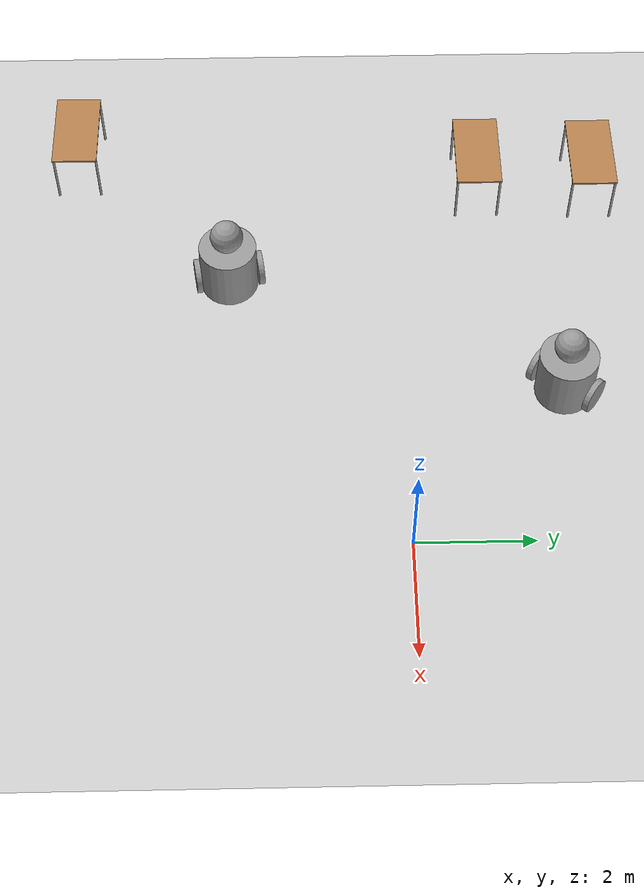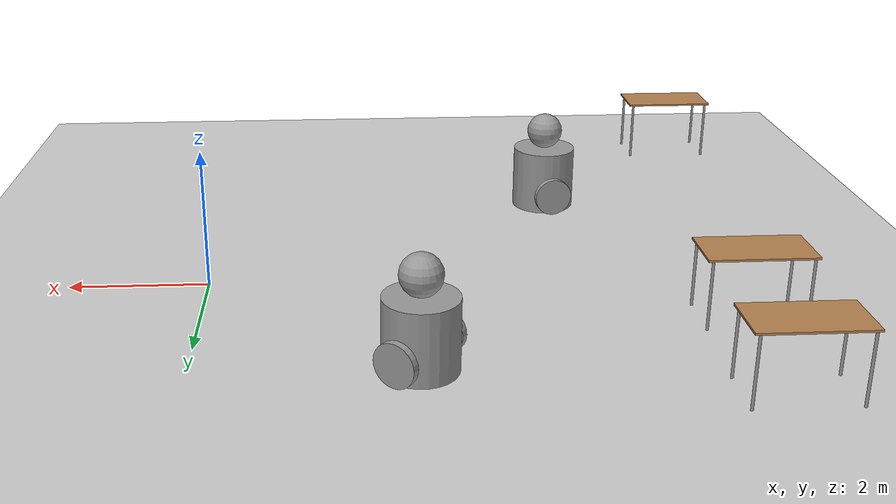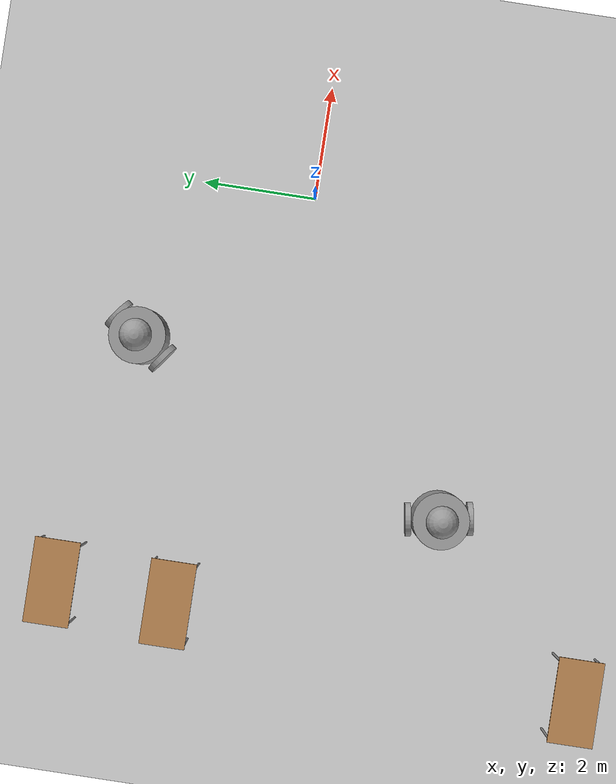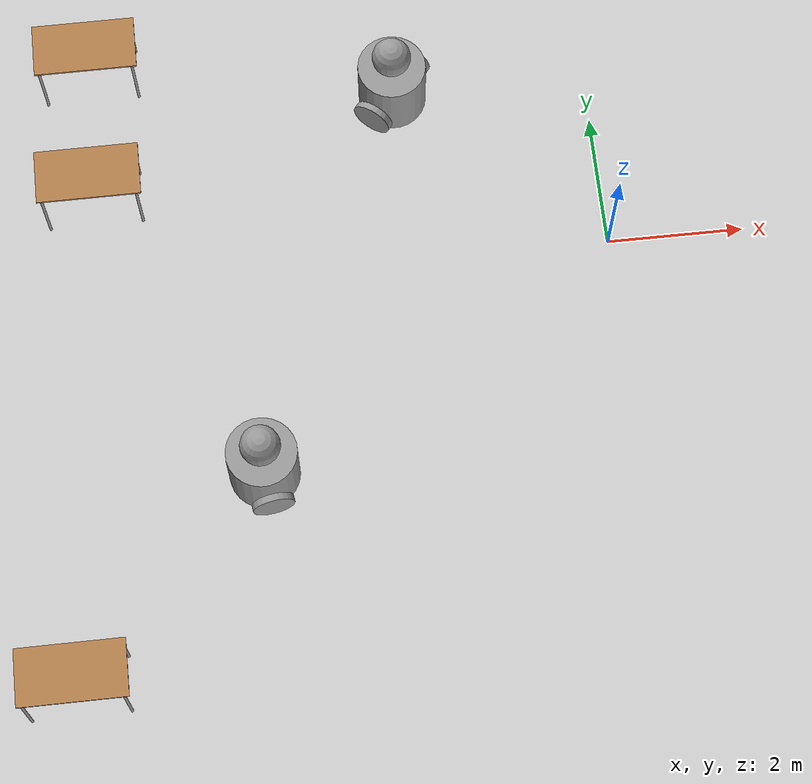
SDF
<sdf version="1.7">
 <world name="world_demo">
  <model name="ground_plane">
   <static>1</static>
   <link name="link">
    <collision name="collision">
     <geometry><plane><normal>0 0 1</normal><size>1 1</size></plane></geometry>
    </collision>
    <visual name="visual">
     <geometry><plane><normal>0 0 1</normal><size>100 100</size></plane></geometry>
     <material>
      <ambient>0.8 0.8 0.8 1</ambient>
      <diffuse>0.8 0.8 0.8 1</diffuse>
      <specular>0.8 0.8 0.8 1</specular>
     </material>
    </visual>
   </link>
  </model>
  <model name="table">
   <static>1</static>
   <link name="link">
    <collision name="surface">
     <pose>0 0 1 0 -0 0</pose>
     <geometry><box><size>1.5 0.8 0.03</size></box></geometry>
     <surface><friction><ode><mu>0.6</mu><mu2>0.6</mu2></ode></friction></surface>
    </collision>
    <visual name="visual1">
     <pose>0 0 1 0 -0 0</pose>
     <geometry><box><size>1.5 0.8 0.03</size></box></geometry>
     <material>
      <script><uri>file://media/materials/scripts/gazebo.material</uri><name>Gazebo/Wood</name></script>
     </material>
    </visual>
    <collision name="front_left_leg">
     <pose>0.68 0.38 0.5 0 -0 0</pose>
     <geometry><cylinder><radius>0.02</radius><length>1</length></cylinder></geometry>
    </collision>
    <visual name="front_left_leg">
     <pose>0.68 0.38 0.5 0 -0 0</pose>
     <geometry><cylinder><radius>0.02</radius><length>1</length></cylinder></geometry>
     <material>
      <script><uri>file://media/materials/scripts/gazebo.material</uri><name>Gazebo/Grey</name></script>
     </material>
    </visual>
    <collision name="front_right_leg">
     <pose>0.68 -0.38 0.5 0 -0 0</pose>
     <geometry><cylinder><radius>0.02</radius><length>1</length></cylinder></geometry>
    </collision>
    <visual name="front_right_leg">
     <pose>0.68 -0.38 0.5 0 -0 0</pose>
     <geometry><cylinder><radius>0.02</radius><length>1</length></cylinder></geometry>
     <material>
      <script><uri>file://media/materials/scripts/gazebo.material</uri><name>Gazebo/Grey</name></script>
     </material>
    </visual>
    <collision name="back_right_leg">
     <pose>-0.68 -0.38 0.5 0 -0 0</pose>
     <geometry><cylinder><radius>0.02</radius><length>1</length></cylinder></geometry>
    </collision>
    <visual name="back_right_leg">
     <pose>-0.68 -0.38 0.5 0 -0 0</pose>
     <geometry><cylinder><radius>0.02</radius><length>1</length></cylinder></geometry>
     <material>
      <script><uri>file://media/materials/scripts/gazebo.material</uri><name>Gazebo/Grey</name></script>
     </material>
    </visual>
    <collision name="back_left_leg">
     <pose>-0.68 0.38 0.5 0 -0 0</pose>
     <geometry><cylinder><radius>0.02</radius><length>1</length></cylinder></geometry>
    </collision>
    <visual name="back_left_leg">
     <pose>-0.68 0.38 0.5 0 -0 0</pose>
     <geometry><cylinder><radius>0.02</radius><length>1</length></cylinder></geometry>
     <material>
      <script><uri>file://media/materials/scripts/gazebo.material</uri><name>Gazebo/Grey</name></script>
     </material>
    </visual>
   </link>
   <pose>-7.37575 3.50508 0 0 -0 0</pose>
  </model>
  <model name="table_0">
   <static>1</static>
   <link name="link">
    <collision name="surface">
     <pose>0 0 1 0 -0 0</pose>
     <geometry><box><size>1.5 0.8 0.03</size></box></geometry>
     <surface><friction><ode><mu>0.6</mu><mu2>0.6</mu2></ode></friction></surface>
    </collision>
    <visual name="visual1">
     <pose>0 0 1 0 -0 0</pose>
     <geometry><box><size>1.5 0.8 0.03</size></box></geometry>
     <material>
      <script><uri>file://media/materials/scripts/gazebo.material</uri><name>Gazebo/Wood</name></script>
     </material>
    </visual>
    <collision name="front_left_leg">
     <pose>0.68 0.38 0.5 0 -0 0</pose>
     <geometry><cylinder><radius>0.02</radius><length>1</length></cylinder></geometry>
    </collision>
    <visual name="front_left_leg">
     <pose>0.68 0.38 0.5 0 -0 0</pose>
     <geometry><cylinder><radius>0.02</radius><length>1</length></cylinder></geometry>
     <material>
      <script><uri>file://media/materials/scripts/gazebo.material</uri><name>Gazebo/Grey</name></script>
     </material>
    </visual>
    <collision name="front_right_leg">
     <pose>0.68 -0.38 0.5 0 -0 0</pose>
     <geometry><cylinder><radius>0.02</radius><length>1</length></cylinder></geometry>
    </collision>
    <visual name="front_right_leg">
     <pose>0.68 -0.38 0.5 0 -0 0</pose>
     <geometry><cylinder><radius>0.02</radius><length>1</length></cylinder></geometry>
     <material>
      <script><uri>file://media/materials/scripts/gazebo.material</uri><name>Gazebo/Grey</name></script>
     </material>
    </visual>
    <collision name="back_right_leg">
     <pose>-0.68 -0.38 0.5 0 -0 0</pose>
     <geometry><cylinder><radius>0.02</radius><length>1</length></cylinder></geometry>
    </collision>
    <visual name="back_right_leg">
     <pose>-0.68 -0.38 0.5 0 -0 0</pose>
     <geometry><cylinder><radius>0.02</radius><length>1</length></cylinder></geometry>
     <material>
      <script><uri>file://media/materials/scripts/gazebo.material</uri><name>Gazebo/Grey</name></script>
     </material>
    </visual>
    <collision name="back_left_leg">
     <pose>-0.68 0.38 0.5 0 -0 0</pose>
     <geometry><cylinder><radius>0.02</radius><length>1</length></cylinder></geometry>
    </collision>
    <visual name="back_left_leg">
     <pose>-0.68 0.38 0.5 0 -0 0</pose>
     <geometry><cylinder><radius>0.02</radius><length>1</length></cylinder></geometry>
     <material>
      <script><uri>file://media/materials/scripts/gazebo.material</uri><name>Gazebo/Grey</name></script>
     </material>
    </visual>
   </link>
   <pose>-7.44483 1.45243 0 0 -0 0</pose>
  </model>
  <model name="table_1">
   <static>1</static>
   <link name="link">
    <collision name="surface">
     <pose>0 0 1 0 -0 0</pose>
     <geometry><box><size>1.5 0.8 0.03</size></box></geometry>
     <surface><friction><ode><mu>0.6</mu><mu2>0.6</mu2></ode></friction></surface>
    </collision>
    <visual name="visual1">
     <pose>0 0 1 0 -0 0</pose>
     <geometry><box><size>1.5 0.8 0.03</size></box></geometry>
     <material>
      <script><uri>file://media/materials/scripts/gazebo.material</uri><name>Gazebo/Wood</name></script>
     </material>
    </visual>
    <collision name="front_left_leg">
     <pose>0.68 0.38 0.5 0 -0 0</pose>
     <geometry><cylinder><radius>0.02</radius><length>1</length></cylinder></geometry>
    </collision>
    <visual name="front_left_leg">
     <pose>0.68 0.38 0.5 0 -0 0</pose>
     <geometry><cylinder><radius>0.02</radius><length>1</length></cylinder></geometry>
     <material>
      <script><uri>file://media/materials/scripts/gazebo.material</uri><name>Gazebo/Grey</name></script>
     </material>
    </visual>
    <collision name="front_right_leg">
     <pose>0.68 -0.38 0.5 0 -0 0</pose>
     <geometry><cylinder><radius>0.02</radius><length>1</length></cylinder></geometry>
    </collision>
    <visual name="front_right_leg">
     <pose>0.68 -0.38 0.5 0 -0 0</pose>
     <geometry><cylinder><radius>0.02</radius><length>1</length></cylinder></geometry>
     <material>
      <script><uri>file://media/materials/scripts/gazebo.material</uri><name>Gazebo/Grey</name></script>
     </material>
    </visual>
    <collision name="back_right_leg">
     <pose>-0.68 -0.38 0.5 0 -0 0</pose>
     <geometry><cylinder><radius>0.02</radius><length>1</length></cylinder></geometry>
    </collision>
    <visual name="back_right_leg">
     <pose>-0.68 -0.38 0.5 0 -0 0</pose>
     <geometry><cylinder><radius>0.02</radius><length>1</length></cylinder></geometry>
     <material>
      <script><uri>file://media/materials/scripts/gazebo.material</uri><name>Gazebo/Grey</name></script>
     </material>
    </visual>
    <collision name="back_left_leg">
     <pose>-0.68 0.38 0.5 0 -0 0</pose>
     <geometry><cylinder><radius>0.02</radius><length>1</length></cylinder></geometry>
    </collision>
    <visual name="back_left_leg">
     <pose>-0.68 0.38 0.5 0 -0 0</pose>
     <geometry><cylinder><radius>0.02</radius><length>1</length></cylinder></geometry>
     <material>
      <script><uri>file://media/materials/scripts/gazebo.material</uri><name>Gazebo/Grey</name></script>
     </material>
    </visual>
   </link>
   <pose>-8.07042 -5.81374 0 0 -0 0</pose>
  </model>
  <model name="korosuke">
   <link name="link_0">
    <inertial>
     <mass>1</mass>
     <inertia><ixx>0.145833</ixx><ixy>0</ixy><ixz>0</ixz><iyy>0.145833</iyy><iyz>0</iyz><izz>0.125</izz></inertia>
     <pose>0 0 0.2 0 -0 0</pose>
    </inertial>
    <pose>0 0 -0.252162 0 -0 0</pose>
    <visual name="visual">
     <pose>0 0 0.2 0 -0 0</pose>
     <geometry><cylinder><radius>0.5</radius><length>1</length></cylinder></geometry>
     <material>
      <lighting>1</lighting>
      <script><uri>file://media/materials/scripts/gazebo.material</uri><name>Gazebo/Grey</name></script>
      <shader type="pixel"><normal_map>__default__</normal_map></shader>
      <ambient>0.3 0.3 0.3 1</ambient>
      <diffuse>0.7 0.7 0.7 1</diffuse>
      <specular>0.01 0.01 0.01 1</specular>
      <emissive>0 0 0 1</emissive>
     </material>
    </visual>
    <collision name="collision">
     <pose>0 0 0.2 0 -0 0</pose>
     <geometry><cylinder><radius>0.5</radius><length>1</length></cylinder></geometry>
     <surface>
      <friction>
       <ode><mu>1</mu><mu2>1</mu2><fdir1>0 0 0</fdir1><slip1>0</slip1><slip2>0</slip2></ode>
       <torsional>
        <coefficient>1</coefficient>
        <patch_radius>0</patch_radius>
        <surface_radius>0</surface_radius>
        <use_patch_radius>1</use_patch_radius>
        <ode><slip>0</slip></ode>
       </torsional>
      </friction>
      <bounce><restitution_coefficient>0</restitution_coefficient><threshold>1e+06</threshold></bounce>
      <contact>
       <collide_without_contact>0</collide_without_contact>
       <collide_without_contact_bitmask>1</collide_without_contact_bitmask>
       <collide_bitmask>1</collide_bitmask>
       <ode>
        <soft_cfm>0</soft_cfm>
        <soft_erp>0.2</soft_erp>
        <kp>1e+13</kp>
        <kd>1</kd>
        <max_vel>0.01</max_vel>
        <min_depth>0</min_depth>
       </ode>
       <bullet>
        <split_impulse>1</split_impulse>
        <split_impulse_penetration_threshold>-0.01</split_impulse_penetration_threshold>
        <soft_cfm>0</soft_cfm>
        <soft_erp>0.2</soft_erp>
        <kp>1e+13</kp>
        <kd>1</kd>
       </bullet>
      </contact>
     </surface>
    </collision>
   </link>
   <link name="link_1">
    <inertial>
     <mass>1</mass>
     <inertia><ixx>0.145833</ixx><ixy>0</ixy><ixz>0</ixz><iyy>0.145833</iyy><iyz>0</iyz><izz>0.125</izz></inertia>
    </inertial>
    <pose>0 -0.550029 -0.242163 1.5707 -0 0</pose>
    <visual name="visual">
     <geometry><cylinder><radius>0.3</radius><length>0.1</length></cylinder></geometry>
     <material>
      <lighting>1</lighting>
      <script><uri>file://media/materials/scripts/gazebo.material</uri><name>Gazebo/Grey</name></script>
      <shader type="pixel"><normal_map>__default__</normal_map></shader>
      <ambient>0.3 0.3 0.3 1</ambient>
      <diffuse>0.7 0.7 0.7 1</diffuse>
      <specular>0.01 0.01 0.01 1</specular>
      <emissive>0 0 0 1</emissive>
     </material>
    </visual>
    <collision name="collision">
     <geometry><cylinder><radius>0.3</radius><length>0.1</length></cylinder></geometry>
     <surface>
      <friction>
       <ode><mu>1</mu><mu2>1</mu2><fdir1>0 0 0</fdir1><slip1>0</slip1><slip2>0</slip2></ode>
       <torsional>
        <coefficient>1</coefficient>
        <patch_radius>0</patch_radius>
        <surface_radius>0</surface_radius>
        <use_patch_radius>1</use_patch_radius>
        <ode><slip>0</slip></ode>
       </torsional>
      </friction>
      <bounce><restitution_coefficient>0</restitution_coefficient><threshold>1e+06</threshold></bounce>
      <contact>
       <collide_without_contact>0</collide_without_contact>
       <collide_without_contact_bitmask>1</collide_without_contact_bitmask>
       <collide_bitmask>1</collide_bitmask>
       <ode>
        <soft_cfm>0</soft_cfm>
        <soft_erp>0.2</soft_erp>
        <kp>1e+13</kp>
        <kd>1</kd>
        <max_vel>0.01</max_vel>
        <min_depth>0</min_depth>
       </ode>
       <bullet>
        <split_impulse>1</split_impulse>
        <split_impulse_penetration_threshold>-0.01</split_impulse_penetration_threshold>
        <soft_cfm>0</soft_cfm>
        <soft_erp>0.2</soft_erp>
        <kp>1e+13</kp>
        <kd>1</kd>
       </bullet>
      </contact>
     </surface>
    </collision>
   </link>
   <link name="link_1_clone">
    <inertial>
     <mass>1</mass>
     <inertia><ixx>0.145833</ixx><ixy>0</ixy><ixz>0</ixz><iyy>0.145833</iyy><iyz>0</iyz><izz>0.125</izz></inertia>
    </inertial>
    <pose>0 0.550029 -0.242163 1.5707 -0 0</pose>
    <visual name="visual">
     <geometry><cylinder><radius>0.3</radius><length>0.1</length></cylinder></geometry>
     <material>
      <lighting>1</lighting>
      <script><uri>file://media/materials/scripts/gazebo.material</uri><name>Gazebo/Grey</name></script>
      <shader type="pixel"><normal_map>__default__</normal_map></shader>
      <ambient>0.3 0.3 0.3 1</ambient>
      <diffuse>0.7 0.7 0.7 1</diffuse>
      <specular>0.01 0.01 0.01 1</specular>
      <emissive>0 0 0 1</emissive>
     </material>
    </visual>
    <collision name="collision">
     <geometry><cylinder><radius>0.3</radius><length>0.1</length></cylinder></geometry>
     <surface>
      <friction>
       <ode><mu>1</mu><mu2>1</mu2><fdir1>0 0 0</fdir1><slip1>0</slip1><slip2>0</slip2></ode>
       <torsional>
        <coefficient>1</coefficient>
        <patch_radius>0</patch_radius>
        <surface_radius>0</surface_radius>
        <use_patch_radius>1</use_patch_radius>
        <ode><slip>0</slip></ode>
       </torsional>
      </friction>
      <bounce><restitution_coefficient>0</restitution_coefficient><threshold>1e+06</threshold></bounce>
      <contact>
       <collide_without_contact>0</collide_without_contact>
       <collide_without_contact_bitmask>1</collide_without_contact_bitmask>
       <collide_bitmask>1</collide_bitmask>
       <ode>
        <soft_cfm>0</soft_cfm>
        <soft_erp>0.2</soft_erp>
        <kp>1e+13</kp>
        <kd>1</kd>
        <max_vel>0.01</max_vel>
        <min_depth>0</min_depth>
       </ode>
       <bullet>
        <split_impulse>1</split_impulse>
        <split_impulse_penetration_threshold>-0.01</split_impulse_penetration_threshold>
        <soft_cfm>0</soft_cfm>
        <soft_erp>0.2</soft_erp>
        <kp>1e+13</kp>
        <kd>1</kd>
       </bullet>
      </contact>
     </surface>
    </collision>
   </link>
   <link name="link_2">
    <inertial>
     <mass>0.184277</mass>
     <inertia>
      <ixx>0.00596732</ixx>
      <ixy>0</ixy>
      <ixz>0</ixz>
      <iyy>0.00596732</iyy>
      <iyz>0</iyz>
      <izz>0.00596732</izz>
     </inertia>
    </inertial>
    <pose>0 0 0.73649 0 -0 0</pose>
    <visual name="visual">
     <geometry><sphere><radius>0.284527</radius></sphere></geometry>
     <material>
      <lighting>1</lighting>
      <script><uri>file://media/materials/scripts/gazebo.material</uri><name>Gazebo/Grey</name></script>
      <shader type="pixel"/>
      <emissive>0 0 0 1</emissive>
     </material>
    </visual>
    <collision name="collision">
     <geometry><sphere><radius>0.284527</radius></sphere></geometry>
     <surface>
      <friction>
       <ode><mu>1</mu><mu2>1</mu2><fdir1>0 0 0</fdir1><slip1>0</slip1><slip2>0</slip2></ode>
       <torsional>
        <coefficient>1</coefficient>
        <patch_radius>0</patch_radius>
        <surface_radius>0</surface_radius>
        <use_patch_radius>1</use_patch_radius>
        <ode><slip>0</slip></ode>
       </torsional>
      </friction>
      <bounce><restitution_coefficient>0</restitution_coefficient><threshold>1e+06</threshold></bounce>
      <contact>
       <collide_without_contact>0</collide_without_contact>
       <collide_without_contact_bitmask>1</collide_without_contact_bitmask>
       <collide_bitmask>1</collide_bitmask>
       <ode>
        <soft_cfm>0</soft_cfm>
        <soft_erp>0.2</soft_erp>
        <kp>1e+13</kp>
        <kd>1</kd>
        <max_vel>0.01</max_vel>
        <min_depth>0</min_depth>
       </ode>
       <bullet>
        <split_impulse>1</split_impulse>
        <split_impulse_penetration_threshold>-0.01</split_impulse_penetration_threshold>
        <soft_cfm>0</soft_cfm>
        <soft_erp>0.2</soft_erp>
        <kp>1e+13</kp>
        <kd>1</kd>
       </bullet>
      </contact>
     </surface>
    </collision>
   </link>
   <joint name="link_0_JOINT_1" type="revolute">
    <parent>link_0</parent>
    <child>link_1</child>
    <axis>
     <xyz>1 0 0</xyz>
     <limit>
      <lower>-1.79769e+308</lower>
      <upper>1.79769e+308</upper>
      <effort>-1</effort>
      <velocity>-1</velocity>
     </limit>
     <dynamics>
      <spring_reference>0</spring_reference>
      <spring_stiffness>0</spring_stiffness>
      <damping>0</damping>
     </dynamics>
    </axis>
    <physics>
     <ode><limit><cfm>0</cfm><erp>0.2</erp></limit><suspension><cfm>0</cfm><erp>0.2</erp></suspension></ode>
    </physics>
   </joint>
   <joint name="link_0_JOINT_2" type="revolute">
    <parent>link_0</parent>
    <child>link_1_clone</child>
    <axis>
     <xyz>1 0 0</xyz>
     <limit>
      <lower>-1.79769e+308</lower>
      <upper>1.79769e+308</upper>
      <effort>-1</effort>
      <velocity>-1</velocity>
     </limit>
     <dynamics>
      <spring_reference>0</spring_reference>
      <spring_stiffness>0</spring_stiffness>
      <damping>0</damping>
     </dynamics>
    </axis>
    <physics>
     <ode><limit><cfm>0</cfm><erp>0.2</erp></limit><suspension><cfm>0</cfm><erp>0.2</erp></suspension></ode>
    </physics>
   </joint>
   <joint name="link_0_JOINT_4" type="revolute">
    <parent>link_0</parent>
    <child>link_2</child>
    <axis>
     <xyz>1 0 0</xyz>
     <limit>
      <lower>-1.79769e+308</lower>
      <upper>1.79769e+308</upper>
      <effort>-1</effort>
      <velocity>-1</velocity>
     </limit>
     <dynamics>
      <spring_reference>0</spring_reference>
      <spring_stiffness>0</spring_stiffness>
      <damping>0</damping>
     </dynamics>
    </axis>
    <physics>
     <ode><limit><cfm>0</cfm><erp>0.2</erp></limit><suspension><cfm>0</cfm><erp>0.2</erp></suspension></ode>
    </physics>
   </joint>
   <static>0</static>
   <pose>-2.90566 2.69036 0.555308 -0.004332 0.00461 2.49993</pose>
  </model>
  <model name="korosuke_0">
   <link name="link_0">
    <inertial>
     <mass>1</mass>
     <inertia><ixx>0.145833</ixx><ixy>0</ixy><ixz>0</ixz><iyy>0.145833</iyy><iyz>0</iyz><izz>0.125</izz></inertia>
     <pose>0 0 0.2 0 -0 0</pose>
    </inertial>
    <pose>0 0 -0.252162 0 -0 0</pose>
    <visual name="visual">
     <pose>0 0 0.2 0 -0 0</pose>
     <geometry><cylinder><radius>0.5</radius><length>1</length></cylinder></geometry>
     <material>
      <lighting>1</lighting>
      <script><uri>file://media/materials/scripts/gazebo.material</uri><name>Gazebo/Grey</name></script>
      <shader type="pixel"><normal_map>__default__</normal_map></shader>
      <ambient>0.3 0.3 0.3 1</ambient>
      <diffuse>0.7 0.7 0.7 1</diffuse>
      <specular>0.01 0.01 0.01 1</specular>
      <emissive>0 0 0 1</emissive>
     </material>
    </visual>
    <collision name="collision">
     <pose>0 0 0.2 0 -0 0</pose>
     <geometry><cylinder><radius>0.5</radius><length>1</length></cylinder></geometry>
     <surface>
      <friction>
       <ode><mu>1</mu><mu2>1</mu2><fdir1>0 0 0</fdir1><slip1>0</slip1><slip2>0</slip2></ode>
       <torsional>
        <coefficient>1</coefficient>
        <patch_radius>0</patch_radius>
        <surface_radius>0</surface_radius>
        <use_patch_radius>1</use_patch_radius>
        <ode><slip>0</slip></ode>
       </torsional>
      </friction>
      <bounce><restitution_coefficient>0</restitution_coefficient><threshold>1e+06</threshold></bounce>
      <contact>
       <collide_without_contact>0</collide_without_contact>
       <collide_without_contact_bitmask>1</collide_without_contact_bitmask>
       <collide_bitmask>1</collide_bitmask>
       <ode>
        <soft_cfm>0</soft_cfm>
        <soft_erp>0.2</soft_erp>
        <kp>1e+13</kp>
        <kd>1</kd>
        <max_vel>0.01</max_vel>
        <min_depth>0</min_depth>
       </ode>
       <bullet>
        <split_impulse>1</split_impulse>
        <split_impulse_penetration_threshold>-0.01</split_impulse_penetration_threshold>
        <soft_cfm>0</soft_cfm>
        <soft_erp>0.2</soft_erp>
        <kp>1e+13</kp>
        <kd>1</kd>
       </bullet>
      </contact>
     </surface>
    </collision>
   </link>
   <link name="link_1">
    <inertial>
     <mass>1</mass>
     <inertia><ixx>0.145833</ixx><ixy>0</ixy><ixz>0</ixz><iyy>0.145833</iyy><iyz>0</iyz><izz>0.125</izz></inertia>
    </inertial>
    <pose>0 -0.550029 -0.242163 1.5707 -0 0</pose>
    <visual name="visual">
     <geometry><cylinder><radius>0.3</radius><length>0.1</length></cylinder></geometry>
     <material>
      <lighting>1</lighting>
      <script><uri>file://media/materials/scripts/gazebo.material</uri><name>Gazebo/Grey</name></script>
      <shader type="pixel"><normal_map>__default__</normal_map></shader>
      <ambient>0.3 0.3 0.3 1</ambient>
      <diffuse>0.7 0.7 0.7 1</diffuse>
      <specular>0.01 0.01 0.01 1</specular>
      <emissive>0 0 0 1</emissive>
     </material>
    </visual>
    <collision name="collision">
     <geometry><cylinder><radius>0.3</radius><length>0.1</length></cylinder></geometry>
     <surface>
      <friction>
       <ode><mu>1</mu><mu2>1</mu2><fdir1>0 0 0</fdir1><slip1>0</slip1><slip2>0</slip2></ode>
       <torsional>
        <coefficient>1</coefficient>
        <patch_radius>0</patch_radius>
        <surface_radius>0</surface_radius>
        <use_patch_radius>1</use_patch_radius>
        <ode><slip>0</slip></ode>
       </torsional>
      </friction>
      <bounce><restitution_coefficient>0</restitution_coefficient><threshold>1e+06</threshold></bounce>
      <contact>
       <collide_without_contact>0</collide_without_contact>
       <collide_without_contact_bitmask>1</collide_without_contact_bitmask>
       <collide_bitmask>1</collide_bitmask>
       <ode>
        <soft_cfm>0</soft_cfm>
        <soft_erp>0.2</soft_erp>
        <kp>1e+13</kp>
        <kd>1</kd>
        <max_vel>0.01</max_vel>
        <min_depth>0</min_depth>
       </ode>
       <bullet>
        <split_impulse>1</split_impulse>
        <split_impulse_penetration_threshold>-0.01</split_impulse_penetration_threshold>
        <soft_cfm>0</soft_cfm>
        <soft_erp>0.2</soft_erp>
        <kp>1e+13</kp>
        <kd>1</kd>
       </bullet>
      </contact>
     </surface>
    </collision>
   </link>
   <link name="link_1_clone">
    <inertial>
     <mass>1</mass>
     <inertia><ixx>0.145833</ixx><ixy>0</ixy><ixz>0</ixz><iyy>0.145833</iyy><iyz>0</iyz><izz>0.125</izz></inertia>
    </inertial>
    <pose>0 0.550029 -0.242163 1.5707 -0 0</pose>
    <visual name="visual">
     <geometry><cylinder><radius>0.3</radius><length>0.1</length></cylinder></geometry>
     <material>
      <lighting>1</lighting>
      <script><uri>file://media/materials/scripts/gazebo.material</uri><name>Gazebo/Grey</name></script>
      <shader type="pixel"><normal_map>__default__</normal_map></shader>
      <ambient>0.3 0.3 0.3 1</ambient>
      <diffuse>0.7 0.7 0.7 1</diffuse>
      <specular>0.01 0.01 0.01 1</specular>
      <emissive>0 0 0 1</emissive>
     </material>
    </visual>
    <collision name="collision">
     <geometry><cylinder><radius>0.3</radius><length>0.1</length></cylinder></geometry>
     <surface>
      <friction>
       <ode><mu>1</mu><mu2>1</mu2><fdir1>0 0 0</fdir1><slip1>0</slip1><slip2>0</slip2></ode>
       <torsional>
        <coefficient>1</coefficient>
        <patch_radius>0</patch_radius>
        <surface_radius>0</surface_radius>
        <use_patch_radius>1</use_patch_radius>
        <ode><slip>0</slip></ode>
       </torsional>
      </friction>
      <bounce><restitution_coefficient>0</restitution_coefficient><threshold>1e+06</threshold></bounce>
      <contact>
       <collide_without_contact>0</collide_without_contact>
       <collide_without_contact_bitmask>1</collide_without_contact_bitmask>
       <collide_bitmask>1</collide_bitmask>
       <ode>
        <soft_cfm>0</soft_cfm>
        <soft_erp>0.2</soft_erp>
        <kp>1e+13</kp>
        <kd>1</kd>
        <max_vel>0.01</max_vel>
        <min_depth>0</min_depth>
       </ode>
       <bullet>
        <split_impulse>1</split_impulse>
        <split_impulse_penetration_threshold>-0.01</split_impulse_penetration_threshold>
        <soft_cfm>0</soft_cfm>
        <soft_erp>0.2</soft_erp>
        <kp>1e+13</kp>
        <kd>1</kd>
       </bullet>
      </contact>
     </surface>
    </collision>
   </link>
   <link name="link_2">
    <inertial>
     <mass>0.184277</mass>
     <inertia>
      <ixx>0.00596732</ixx>
      <ixy>0</ixy>
      <ixz>0</ixz>
      <iyy>0.00596732</iyy>
      <iyz>0</iyz>
      <izz>0.00596732</izz>
     </inertia>
    </inertial>
    <pose>0 0 0.73649 0 -0 0</pose>
    <visual name="visual">
     <geometry><sphere><radius>0.284527</radius></sphere></geometry>
     <material>
      <lighting>1</lighting>
      <script><uri>file://media/materials/scripts/gazebo.material</uri><name>Gazebo/Grey</name></script>
      <shader type="pixel"/>
      <emissive>0 0 0 1</emissive>
     </material>
    </visual>
    <collision name="collision">
     <geometry><sphere><radius>0.284527</radius></sphere></geometry>
     <surface>
      <friction>
       <ode><mu>1</mu><mu2>1</mu2><fdir1>0 0 0</fdir1><slip1>0</slip1><slip2>0</slip2></ode>
       <torsional>
        <coefficient>1</coefficient>
        <patch_radius>0</patch_radius>
        <surface_radius>0</surface_radius>
        <use_patch_radius>1</use_patch_radius>
        <ode><slip>0</slip></ode>
       </torsional>
      </friction>
      <bounce><restitution_coefficient>0</restitution_coefficient><threshold>1e+06</threshold></bounce>
      <contact>
       <collide_without_contact>0</collide_without_contact>
       <collide_without_contact_bitmask>1</collide_without_contact_bitmask>
       <collide_bitmask>1</collide_bitmask>
       <ode>
        <soft_cfm>0</soft_cfm>
        <soft_erp>0.2</soft_erp>
        <kp>1e+13</kp>
        <kd>1</kd>
        <max_vel>0.01</max_vel>
        <min_depth>0</min_depth>
       </ode>
       <bullet>
        <split_impulse>1</split_impulse>
        <split_impulse_penetration_threshold>-0.01</split_impulse_penetration_threshold>
        <soft_cfm>0</soft_cfm>
        <soft_erp>0.2</soft_erp>
        <kp>1e+13</kp>
        <kd>1</kd>
       </bullet>
      </contact>
     </surface>
    </collision>
   </link>
   <joint name="link_0_JOINT_1" type="revolute">
    <parent>link_0</parent>
    <child>link_1</child>
    <axis>
     <xyz>1 0 0</xyz>
     <limit>
      <lower>-1.79769e+308</lower>
      <upper>1.79769e+308</upper>
      <effort>-1</effort>
      <velocity>-1</velocity>
     </limit>
     <dynamics>
      <spring_reference>0</spring_reference>
      <spring_stiffness>0</spring_stiffness>
      <damping>0</damping>
     </dynamics>
    </axis>
    <physics>
     <ode><limit><cfm>0</cfm><erp>0.2</erp></limit><suspension><cfm>0</cfm><erp>0.2</erp></suspension></ode>
    </physics>
   </joint>
   <joint name="link_0_JOINT_2" type="revolute">
    <parent>link_0</parent>
    <child>link_1_clone</child>
    <axis>
     <xyz>1 0 0</xyz>
     <limit>
      <lower>-1.79769e+308</lower>
      <upper>1.79769e+308</upper>
      <effort>-1</effort>
      <velocity>-1</velocity>
     </limit>
     <dynamics>
      <spring_reference>0</spring_reference>
      <spring_stiffness>0</spring_stiffness>
      <damping>0</damping>
     </dynamics>
    </axis>
    <physics>
     <ode><limit><cfm>0</cfm><erp>0.2</erp></limit><suspension><cfm>0</cfm><erp>0.2</erp></suspension></ode>
    </physics>
   </joint>
   <joint name="link_0_JOINT_4" type="revolute">
    <parent>link_0</parent>
    <child>link_2</child>
    <axis>
     <xyz>1 0 0</xyz>
     <limit>
      <lower>-1.79769e+308</lower>
      <upper>1.79769e+308</upper>
      <effort>-1</effort>
      <velocity>-1</velocity>
     </limit>
     <dynamics>
      <spring_reference>0</spring_reference>
      <spring_stiffness>0</spring_stiffness>
      <damping>0</damping>
     </dynamics>
    </axis>
    <physics>
     <ode><limit><cfm>0</cfm><erp>0.2</erp></limit><suspension><cfm>0</cfm><erp>0.2</erp></suspension></ode>
    </physics>
   </joint>
   <static>0</static>
   <pose>-5.30959 -3.02415 0.552162 0 -0 0.157774</pose>
  </model>
 </world>
</sdf>
